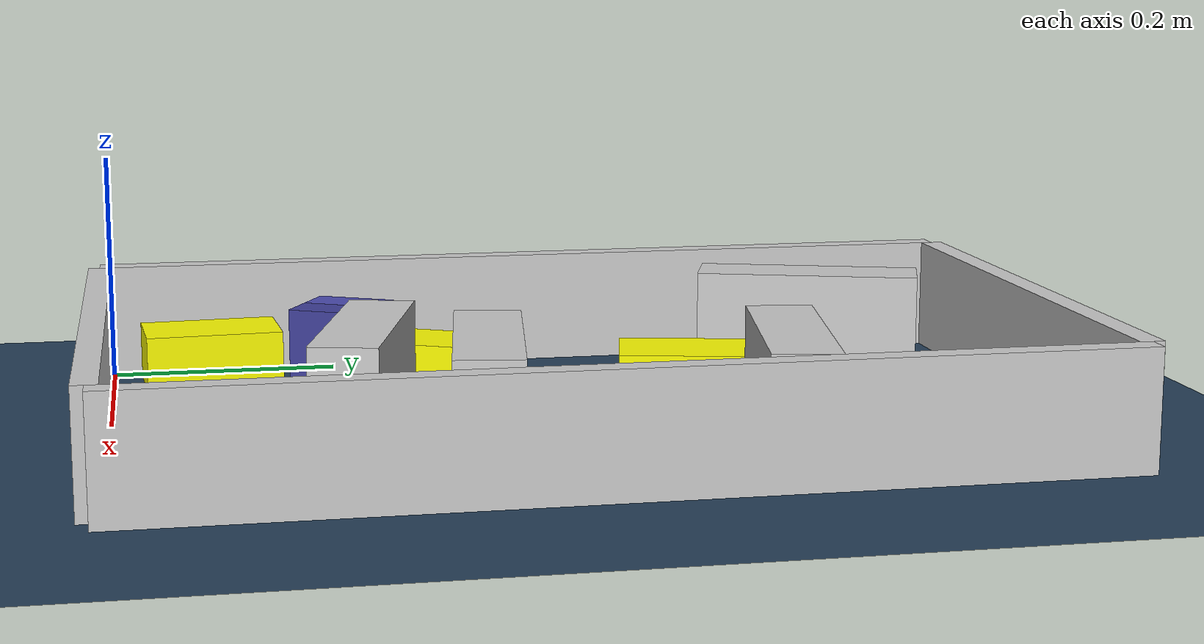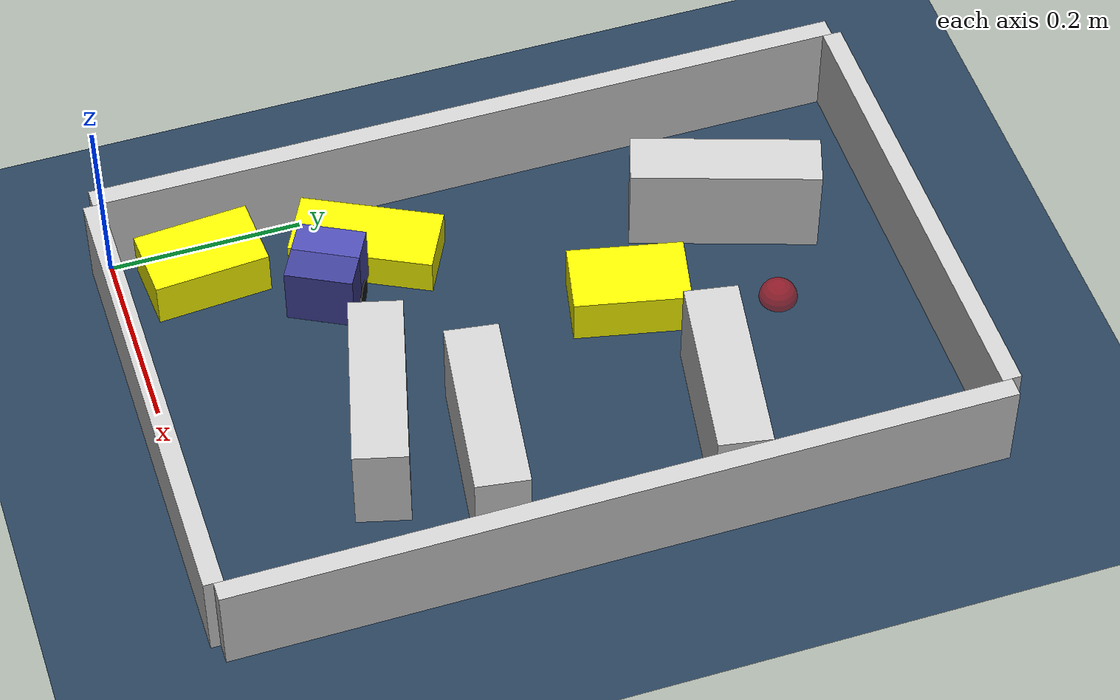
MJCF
<?xml version='1.0' encoding='utf-8'?>
<mujoco model="real_buildable">
  <compiler angle="degree" />
  <option timestep="0.002" integrator="implicitfast" iterations="100" cone="elliptic" />
  <default>
    <geom density="1" />
  </default>
  <asset>
    <texture builtin="gradient" height="3072" rgb1="0.3 0.5 0.7" rgb2="0 0 0" type="skybox" width="512" />
    <texture builtin="checker" height="300" mark="edge" markrgb="0.8 0.8 0.8" name="groundplane" rgb1="0.2 0.3 0.4" rgb2="0.1 0.2 0.3" type="2d" width="300" />
    <material name="groundplane" reflectance="0.2" texrepeat="5 5" texture="groundplane" texuniform="true" />
  </asset>
  <worldbody>
    <light dir="0 0 -1" directional="true" pos="0 0 1.5" />
    <geom name="floor" type="plane" condim="4" friction="0.5 0.005 0.001" material="groundplane" size="0 0 0.05" />
    <body name="walls">
      <geom name="wall_boundary_left" type="box" condim="4" friction="1.0 0.005 0.0001" rgba="0.8 0.8 0.8 1" pos="-0.010000 0.387500 0.050000" euler="0 0 0.000000" size="0.010000 0.397500 0.050000" />
      <geom name="wall_boundary_right" type="box" condim="4" friction="1.0 0.005 0.0001" rgba="0.8 0.8 0.8 1" pos="0.500000 0.387500 0.050000" euler="0 0 0.000000" size="0.010000 0.397500 0.050000" />
      <geom name="wall_boundary_bottom" type="box" condim="4" friction="1.0 0.005 0.0001" rgba="0.8 0.8 0.8 1" pos="0.245000 -0.010000 0.050000" euler="0 0 0.000000" size="0.245000 0.010000 0.050000" />
      <geom name="wall_boundary_top" type="box" condim="4" friction="1.0 0.005 0.0001" rgba="0.8 0.8 0.8 1" pos="0.245000 0.785000 0.050000" euler="0 0 0.000000" size="0.245000 0.010000 0.050000" />
      <geom name="wall_inner_1" type="box" condim="4" friction="1.0 0.005 0.0001" rgba="0.8 0.8 0.8 1" pos="0.302246 0.201535 0.050000" euler="0 0 -14.604486" size="0.097500 0.027500 0.050000" />
      <geom name="wall_inner_2" type="box" condim="4" friction="1.0 0.005 0.0001" rgba="0.8 0.8 0.8 1" pos="0.364854 0.292477 0.050000" euler="0 0 -8.062091" size="0.097500 0.027500 0.050000" />
      <geom name="wall_inner_3" type="box" condim="4" friction="1.0 0.005 0.0001" rgba="0.8 0.8 0.8 1" pos="0.389000 0.530000 0.050000" euler="0 0 170.400000" size="0.097500 0.027500 0.050000" />
      <geom name="wall_inner_4" type="box" condim="4" friction="1.0 0.005 0.0001" rgba="0.8 0.8 0.8 1" pos="0.134000 0.619000 0.050000" euler="0 0 71.600000" size="0.097500 0.027500 0.050000" />
    </body>
    <body name="car" pos="0.11574651046009794 0.19966271070864383 0.01" quat="0.23678863439347433 0 0 0.97156118830574612">
      <freejoint name="car_freejoint" />
      <inertial pos="0 0 0.0375" mass="0.35" diaginertia="0.000266 0.000266 0.000286" />
      <geom name="front_chassis_collision" type="box" pos="0.0175 0 0.0375" size="0.0175 0.035 0.0325" rgba="0.3 0.3 0.7 1" />
      <geom name="rear_chassis_collision" type="box" pos="-0.0175 0 0.0375" size="0.0175 0.035 0.0325" rgba="0.25 0.25 0.6 1" />
      <geom name="front_marker" type="box" pos="0.034 0 0.0505" size="0.002 0.015 0.01" rgba="1 0.2 0.2 1" contype="0" conaffinity="0" />
      <body name="rear_support_body" pos="-0.03 0 0.0025">
        <joint name="rear_caster_joint" type="ball" damping="0.0001" />
        <inertial pos="0 0 0" mass="0.025" diaginertia="0.000001 0.000001 0.000001" />
        <geom name="rear_support" type="sphere" pos="0 0 0" size="0.0025" friction="0 0 0" rgba="0.7 0.1 0.1 1" />
      </body>
      <body name="front_support_body" pos="0.03 0 0.0025">
        <joint name="front_caster_joint" type="ball" damping="0.0001" />
        <inertial pos="0 0 0" mass="0.025" diaginertia="0.000001 0.000001 0.000001" />
        <geom name="front_support" type="sphere" pos="0 0 0" size="0.0025" friction="0 0 0" rgba="0.1 0.7 0.1 1" />
      </body>
      <body name="left_wheel" pos="0 0.0375 0.015">
        <inertial pos="0 0 0" mass="0.05" diaginertia="0.000003 0.000006 0.000003" />
        <joint name="left_wheel_joint" type="hinge" axis="0 1 0" damping="0.01" armature="0.0001" />
        <geom name="left_wheel_collision" type="cylinder" size="0.015 0.0005" euler="90 0 0" rgba="0.1 0.1 0.1 1" />
      </body>
      <body name="right_wheel" pos="0 -0.0375 0.015">
        <inertial pos="0 0 0" mass="0.05" diaginertia="0.000003 0.000006 0.000003" />
        <joint name="right_wheel_joint" type="hinge" axis="0 1 0" damping="0.01" armature="0.0001" />
        <geom name="right_wheel_collision" type="cylinder" size="0.015 0.0005" euler="90 0 0" rgba="0.1 0.1 0.1 1" />
      </body>
    </body>
    <body name="obstacle_0_movable">
      <geom name="obstacle_0_movable" condim="4" pos="0.064960710055080362 0.25516619506945371 0.02" friction="1 0.005 0.0001" rgba="1 1 0 1" size="0.035000 0.075000 0.020000" type="box" mass="0.1" quat="0.23171509435133911 0 0 0.97278369386505958" />
      <joint type="free" />
    </body>
    <body name="obstacle_1_movable">
      <geom name="obstacle_1_movable" condim="4" pos="0.21000000000000021 0.48999999999999971 0.025000000000000001" friction="1 0.005 0.0001" rgba="1 1 0 1" size="0.037500 0.060000 0.025000" type="box" mass="0.1" quat="0.99452189536827329 0 0 -0.10452846326765343" />
      <joint type="free" />
    </body>
    <body name="obstacle_2_movable">
      <geom name="obstacle_2_movable" condim="4" pos="0.04362999999999994 0.087460999999999928 0.025000000000000001" friction="1 0.005 0.0001" rgba="1 1 0 1" size="0.037500 0.060000 0.025000" type="box" mass="0.1" quat="0.99934662453484602 0 0 0.036143104886124724" />
      <joint type="free" />
    </body>
    <site name="goal" type="sphere" pos="0.245000 0.640000 0.0" size="0.02" rgba="1 0 0 0.5" />
  </worldbody>
  <actuator>
    <velocity name="left_wheel_drive" joint="left_wheel_joint" ctrlrange="-25 25" kv="0.75" forcerange="-0.5 0.5" />
    <velocity name="right_wheel_drive" joint="right_wheel_joint" ctrlrange="-25 25" kv="0.75" forcerange="-0.5 0.5" />
  </actuator>
</mujoco>
